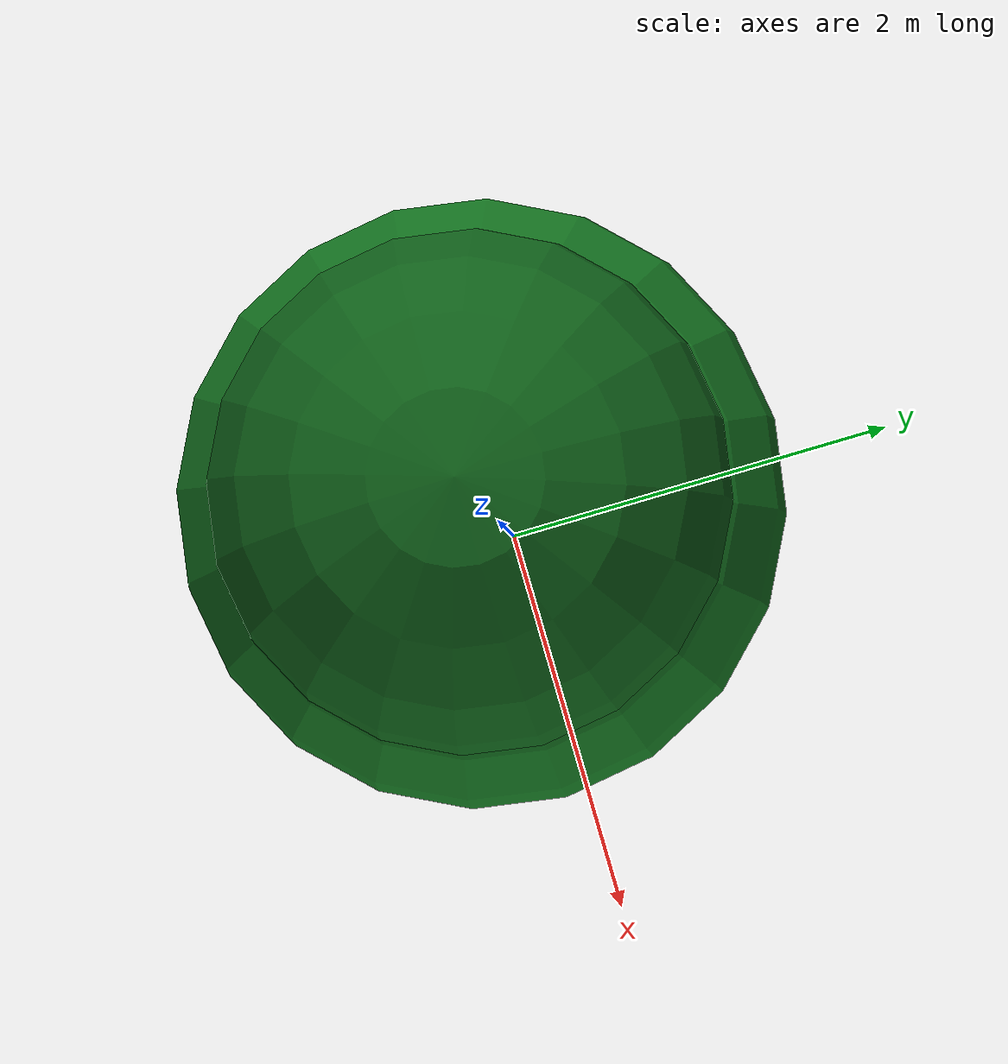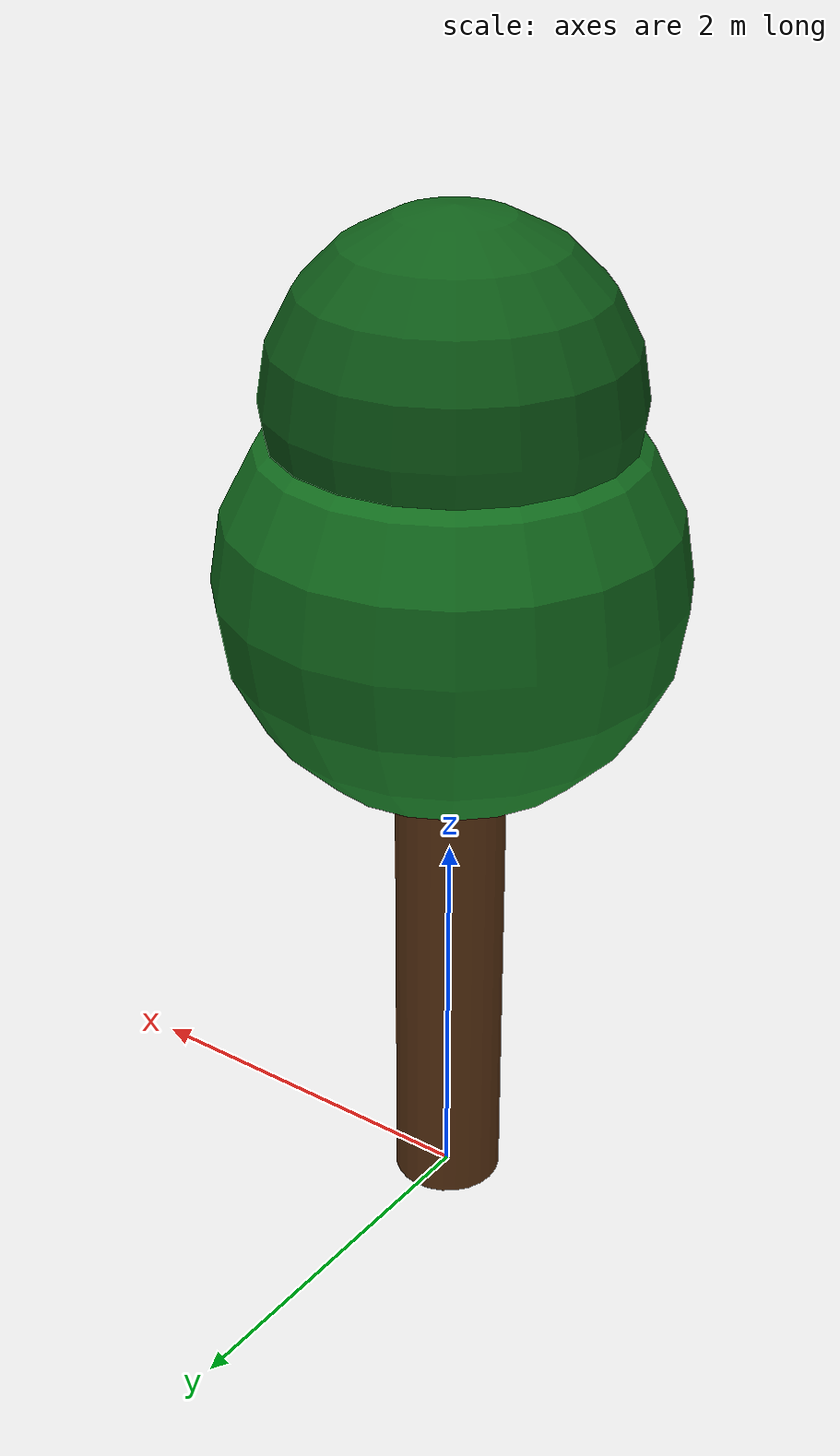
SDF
<?xml version="1.0"?>
<sdf version="1.6">
  <model name="ego_tree">
    <static>true</static>
    <link name="trunk">
      <pose>0 0 2.1 0 0 0</pose>
      <collision name="trunk_collision">
        <geometry>
          <cylinder>
            <radius>0.32</radius>
            <length>4.2</length>
          </cylinder>
        </geometry>
      </collision>
      <visual name="trunk_visual">
        <geometry>
          <cylinder>
            <radius>0.28</radius>
            <length>4.2</length>
          </cylinder>
        </geometry>
        <material>
          <ambient>0.32 0.18 0.08 1</ambient>
          <diffuse>0.42 0.24 0.10 1</diffuse>
        </material>
      </visual>
    </link>
    <link name="lower_canopy">
      <pose>0 0 3.5 0 0 0</pose>
      <collision name="lower_canopy_collision">
        <geometry>
          <sphere>
            <radius>1.15</radius>
          </sphere>
        </geometry>
      </collision>
      <visual name="lower_canopy_visual">
        <geometry>
          <sphere>
            <radius>1.15</radius>
          </sphere>
        </geometry>
        <material>
          <ambient>0.05 0.30 0.09 1</ambient>
          <diffuse>0.08 0.46 0.13 1</diffuse>
        </material>
      </visual>
    </link>
    <link name="upper_canopy">
      <pose>0 0 4.4 0 0 0</pose>
      <collision name="upper_canopy_collision">
        <geometry>
          <sphere>
            <radius>0.9</radius>
          </sphere>
        </geometry>
      </collision>
      <visual name="upper_canopy_visual">
        <geometry>
          <sphere>
            <radius>0.9</radius>
          </sphere>
        </geometry>
        <material>
          <ambient>0.04 0.24 0.07 1</ambient>
          <diffuse>0.06 0.38 0.10 1</diffuse>
        </material>
      </visual>
    </link>
  </model>
</sdf>
